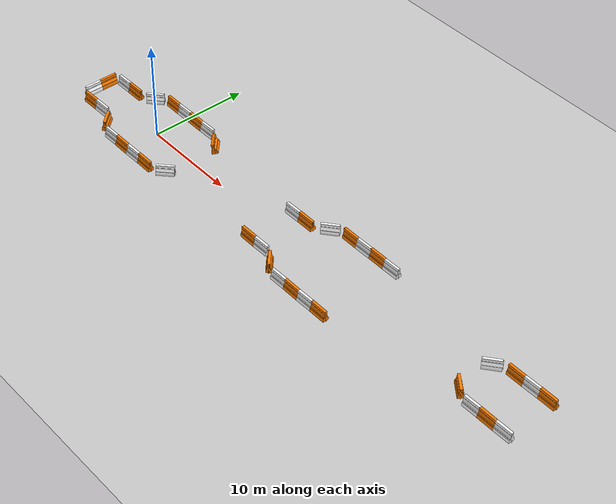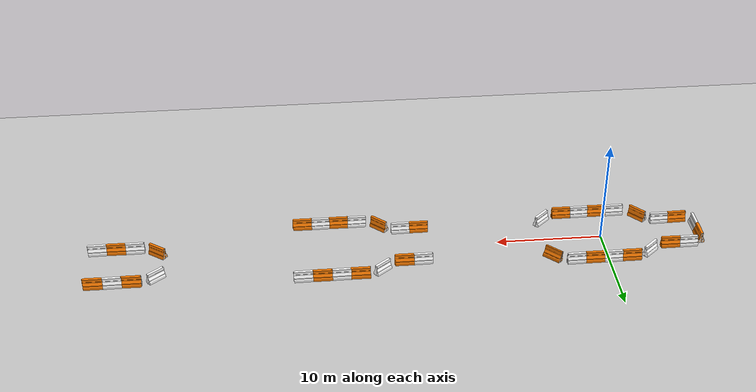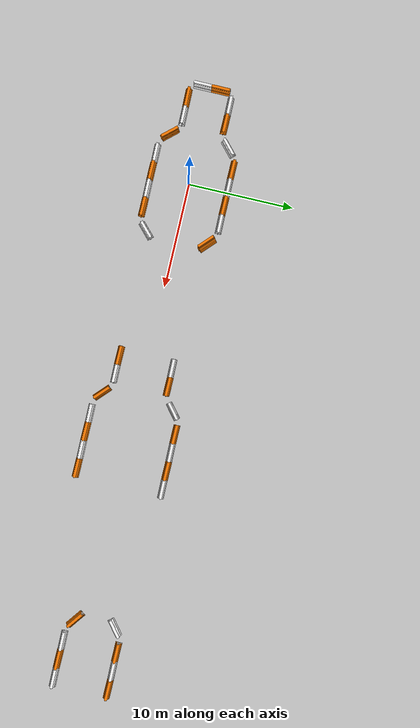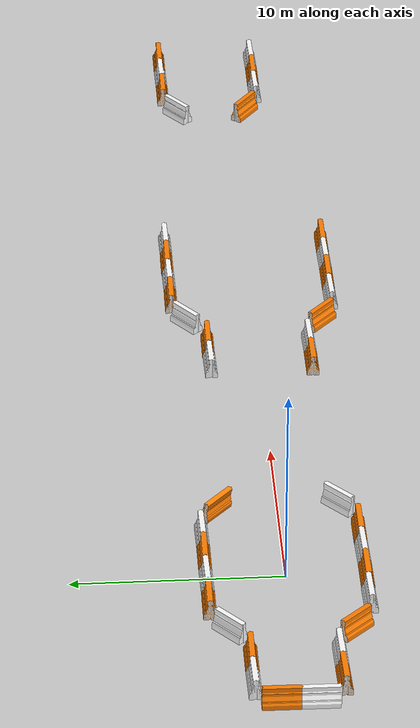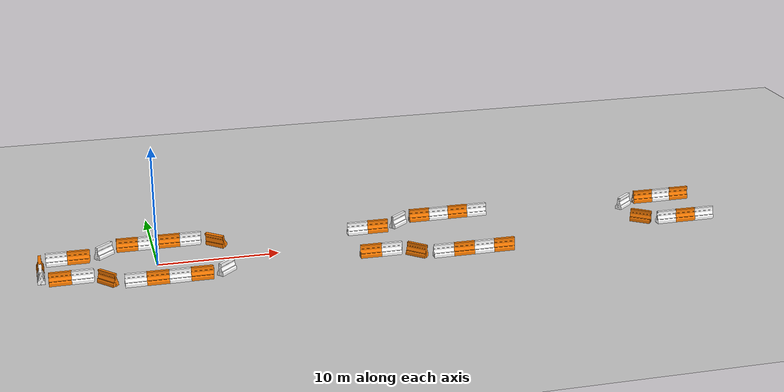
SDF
<sdf version="1.6">
 <world name="default">
  <light name="sun" type="directional">
   <pose>0 0 10 0 -0 0</pose>
   <diffuse>0.8 0.8 0.8 1</diffuse>
   <specular>0.2 0.2 0.2 1</specular>
   <attenuation>
    <range>1000</range>
    <constant>0.9</constant>
    <linear>0.01</linear>
    <quadratic>0.001</quadratic>
   </attenuation>
   <direction>-0.5 0.1 -0.9</direction>
  </light>
  <model name="ground_plane">
   <static>1</static>
   <link name="link">
    <collision name="collision">
     <geometry><plane><normal>0 0 1</normal><size>100 100</size></plane></geometry>
     <surface><friction><ode><mu>100</mu><mu2>50</mu2></ode></friction></surface>
    </collision>
    <visual name="visual">
     <cast_shadows>0</cast_shadows>
     <geometry><plane><normal>0 0 1</normal><size>100 100</size></plane></geometry>
     <material>
      <script><uri>file://media/materials/scripts/gazebo.material</uri><name>Gazebo/Grey</name></script>
     </material>
    </visual>
    <velocity_decay><linear>0</linear><angular>0</angular></velocity_decay>
   </link>
  </model>
  <physics name="default_physics" default="0" type="ode">
   <max_step_size>0.001</max_step_size>
   <real_time_factor>1</real_time_factor>
   <real_time_update_rate>1000</real_time_update_rate>
  </physics>
  <scene><ambient>0.4 0.4 0.4 1</ambient><background>0.7 0.7 0.7 1</background><shadows>1</shadows></scene>
  <spherical_coordinates>
   <surface_model>EARTH_WGS84</surface_model>
   <latitude_deg>0</latitude_deg>
   <longitude_deg>0</longitude_deg>
   <elevation>0</elevation>
   <heading_deg>0</heading_deg>
  </spherical_coordinates>
  <gravity>0 0 -9.8</gravity>
  <magnetic_field>6e-06 2.3e-05 -4.2e-05</magnetic_field>
  <atmosphere type="adiabatic"/>
  <model name="drc_practice_organge_jersey_barrier_2_clone_clone">
   <static>1</static>
   <link name="link">
    <visual name="visual">
     <geometry>
      <mesh><uri>model://drc_practice_orange_jersey_barrier/meshes/jersey_barrier.dae</uri></mesh>
     </geometry>
    </visual>
    <collision name="collision">
     <geometry>
      <mesh><uri>model://drc_practice_orange_jersey_barrier/meshes/jersey_barrier.dae</uri></mesh>
     </geometry>
    </collision>
    <velocity_decay><linear>0</linear><angular>0</angular></velocity_decay>
   </link>
   <pose>-9.31108 0.903543 0 0 -0 0</pose>
  </model>
  <model name="drc_practice_white_jersey_barrier_clone_clone">
   <static>1</static>
   <link name="link">
    <visual name="visual">
     <geometry>
      <mesh><uri>model://drc_practice_white_jersey_barrier/meshes/jersey_barrier.dae</uri></mesh>
     </geometry>
    </visual>
    <collision name="collision">
     <geometry>
      <mesh><uri>model://drc_practice_white_jersey_barrier/meshes/jersey_barrier.dae</uri></mesh>
     </geometry>
    </collision>
    <velocity_decay><linear>0</linear><angular>0</angular></velocity_decay>
   </link>
   <pose>-9.31598 -0.8429 0 0 -0 0</pose>
  </model>
  <model name="drc_practice_white_jersey_barrier_1_clone_clone_clone_0">
   <static>1</static>
   <link name="link">
    <visual name="visual">
     <geometry>
      <mesh><uri>model://drc_practice_white_jersey_barrier/meshes/jersey_barrier.dae</uri></mesh>
     </geometry>
    </visual>
    <collision name="collision">
     <geometry>
      <mesh><uri>model://drc_practice_white_jersey_barrier/meshes/jersey_barrier.dae</uri></mesh>
     </geometry>
    </collision>
    <velocity_decay><linear>0</linear><angular>0</angular></velocity_decay>
   </link>
   <pose>-7.96213 2.01975 0 0 -0 1.59123</pose>
  </model>
  <model name="drc_practice_organge_jersey_barrier_1_clone_clone_0">
   <static>1</static>
   <link name="link">
    <visual name="visual">
     <geometry>
      <mesh><uri>model://drc_practice_orange_jersey_barrier/meshes/jersey_barrier.dae</uri></mesh>
     </geometry>
    </visual>
    <collision name="collision">
     <geometry>
      <mesh><uri>model://drc_practice_orange_jersey_barrier/meshes/jersey_barrier.dae</uri></mesh>
     </geometry>
    </collision>
    <velocity_decay><linear>0</linear><angular>0</angular></velocity_decay>
   </link>
   <pose>-6.2195 2.02771 0 0 -0 1.57109</pose>
  </model>
  <model name="drc_practice_organge_jersey_barrier_0_clone_clone">
   <static>1</static>
   <link name="link">
    <visual name="visual">
     <geometry>
      <mesh><uri>model://drc_practice_orange_jersey_barrier/meshes/jersey_barrier.dae</uri></mesh>
     </geometry>
    </visual>
    <collision name="collision">
     <geometry>
      <mesh><uri>model://drc_practice_orange_jersey_barrier/meshes/jersey_barrier.dae</uri></mesh>
     </geometry>
    </collision>
    <velocity_decay><linear>0</linear><angular>0</angular></velocity_decay>
   </link>
   <pose>-7.86253 -2.01588 0 0 -0 1.59467</pose>
  </model>
  <model name="drc_practice_white_jersey_barrier_1_clone_clone_clone_0_clone">
   <static>1</static>
   <link name="link">
    <visual name="visual">
     <geometry>
      <mesh><uri>model://drc_practice_white_jersey_barrier/meshes/jersey_barrier.dae</uri></mesh>
     </geometry>
    </visual>
    <collision name="collision">
     <geometry>
      <mesh><uri>model://drc_practice_white_jersey_barrier/meshes/jersey_barrier.dae</uri></mesh>
     </geometry>
    </collision>
    <velocity_decay><linear>0</linear><angular>0</angular></velocity_decay>
   </link>
   <pose>-6.1229 -1.98808 0 0 -0 1.59123</pose>
  </model>
  <model name="drc_practice_organge_jersey_barrier_2_clone_clone_0">
   <static>1</static>
   <link name="link">
    <visual name="visual">
     <geometry>
      <mesh><uri>model://drc_practice_orange_jersey_barrier/meshes/jersey_barrier.dae</uri></mesh>
     </geometry>
    </visual>
    <collision name="collision">
     <geometry>
      <mesh><uri>model://drc_practice_orange_jersey_barrier/meshes/jersey_barrier.dae</uri></mesh>
     </geometry>
    </collision>
    <velocity_decay><linear>0</linear><angular>0</angular></velocity_decay>
   </link>
   <pose>-4.21589 -2.8466 0 0 -0 0.735921</pose>
  </model>
  <model name="drc_practice_white_jersey_barrier_clone_clone_0">
   <static>1</static>
   <link name="link">
    <visual name="visual">
     <geometry>
      <mesh><uri>model://drc_practice_white_jersey_barrier/meshes/jersey_barrier.dae</uri></mesh>
     </geometry>
    </visual>
    <collision name="collision">
     <geometry>
      <mesh><uri>model://drc_practice_white_jersey_barrier/meshes/jersey_barrier.dae</uri></mesh>
     </geometry>
    </collision>
    <velocity_decay><linear>0</linear><angular>0</angular></velocity_decay>
   </link>
   <pose>-4.07482 2.85137 0 0 0 -0.829832</pose>
  </model>
  <model name="drc_practice_white_jersey_barrier_1_clone_clone_clone_clone">
   <static>1</static>
   <link name="link">
    <visual name="visual">
     <geometry>
      <mesh><uri>model://drc_practice_white_jersey_barrier/meshes/jersey_barrier.dae</uri></mesh>
     </geometry>
    </visual>
    <collision name="collision">
     <geometry>
      <mesh><uri>model://drc_practice_white_jersey_barrier/meshes/jersey_barrier.dae</uri></mesh>
     </geometry>
    </collision>
    <velocity_decay><linear>0</linear><angular>0</angular></velocity_decay>
   </link>
   <pose>-2.06507 -3.68957 0 0 -0 1.59123</pose>
  </model>
  <model name="drc_practice_organge_jersey_barrier_1_clone_0_clone">
   <static>1</static>
   <link name="link">
    <visual name="visual">
     <geometry>
      <mesh><uri>model://drc_practice_orange_jersey_barrier/meshes/jersey_barrier.dae</uri></mesh>
     </geometry>
    </visual>
    <collision name="collision">
     <geometry>
      <mesh><uri>model://drc_practice_orange_jersey_barrier/meshes/jersey_barrier.dae</uri></mesh>
     </geometry>
    </collision>
    <velocity_decay><linear>0</linear><angular>0</angular></velocity_decay>
   </link>
   <pose>-2.12682 3.67666 0 0 -0 1.57109</pose>
  </model>
  <model name="drc_practice_organge_jersey_barrier_1_clone_0_clone_clone">
   <static>1</static>
   <link name="link">
    <visual name="visual">
     <geometry>
      <mesh><uri>model://drc_practice_orange_jersey_barrier/meshes/jersey_barrier.dae</uri></mesh>
     </geometry>
    </visual>
    <collision name="collision">
     <geometry>
      <mesh><uri>model://drc_practice_orange_jersey_barrier/meshes/jersey_barrier.dae</uri></mesh>
     </geometry>
    </collision>
    <velocity_decay><linear>0</linear><angular>0</angular></velocity_decay>
   </link>
   <pose>-0.338399 -3.69896 0 0 -0 1.57109</pose>
  </model>
  <model name="drc_practice_white_jersey_barrier_1_clone_clone_clone_clone_clone">
   <static>1</static>
   <link name="link">
    <visual name="visual">
     <geometry>
      <mesh><uri>model://drc_practice_white_jersey_barrier/meshes/jersey_barrier.dae</uri></mesh>
     </geometry>
    </visual>
    <collision name="collision">
     <geometry>
      <mesh><uri>model://drc_practice_white_jersey_barrier/meshes/jersey_barrier.dae</uri></mesh>
     </geometry>
    </collision>
    <velocity_decay><linear>0</linear><angular>0</angular></velocity_decay>
   </link>
   <pose>-0.391829 3.68501 0 0 -0 1.59123</pose>
  </model>
  <model name="drc_practice_white_jersey_barrier_1_clone_clone_clone_clone_clone_0">
   <static>1</static>
   <link name="link">
    <visual name="visual">
     <geometry>
      <mesh><uri>model://drc_practice_white_jersey_barrier/meshes/jersey_barrier.dae</uri></mesh>
     </geometry>
    </visual>
    <collision name="collision">
     <geometry>
      <mesh><uri>model://drc_practice_white_jersey_barrier/meshes/jersey_barrier.dae</uri></mesh>
     </geometry>
    </collision>
    <velocity_decay><linear>0</linear><angular>0</angular></velocity_decay>
   </link>
   <pose>1.40638 -3.68781 0 0 -0 1.59123</pose>
  </model>
  <model name="drc_practice_organge_jersey_barrier_1_clone_0_clone_clone_clone">
   <static>1</static>
   <link name="link">
    <visual name="visual">
     <geometry>
      <mesh><uri>model://drc_practice_orange_jersey_barrier/meshes/jersey_barrier.dae</uri></mesh>
     </geometry>
    </visual>
    <collision name="collision">
     <geometry>
      <mesh><uri>model://drc_practice_orange_jersey_barrier/meshes/jersey_barrier.dae</uri></mesh>
     </geometry>
    </collision>
    <velocity_decay><linear>0</linear><angular>0</angular></velocity_decay>
   </link>
   <pose>1.36049 3.69218 0 0 -0 1.57109</pose>
  </model>
  <model name="drc_practice_organge_jersey_barrier_1_clone_0_clone_clone_clone_0">
   <static>1</static>
   <link name="link">
    <visual name="visual">
     <geometry>
      <mesh><uri>model://drc_practice_orange_jersey_barrier/meshes/jersey_barrier.dae</uri></mesh>
     </geometry>
    </visual>
    <collision name="collision">
     <geometry>
      <mesh><uri>model://drc_practice_orange_jersey_barrier/meshes/jersey_barrier.dae</uri></mesh>
     </geometry>
    </collision>
    <velocity_decay><linear>0</linear><angular>0</angular></velocity_decay>
   </link>
   <pose>3.16286 -3.67282 0 0 -0 1.57109</pose>
  </model>
  <model name="drc_practice_white_jersey_barrier_1_clone_clone_clone_clone_clone_0_clone">
   <static>1</static>
   <link name="link">
    <visual name="visual">
     <geometry>
      <mesh><uri>model://drc_practice_white_jersey_barrier/meshes/jersey_barrier.dae</uri></mesh>
     </geometry>
    </visual>
    <collision name="collision">
     <geometry>
      <mesh><uri>model://drc_practice_white_jersey_barrier/meshes/jersey_barrier.dae</uri></mesh>
     </geometry>
    </collision>
    <velocity_decay><linear>0</linear><angular>0</angular></velocity_decay>
   </link>
   <pose>3.10966 3.70412 0 0 -0 1.59123</pose>
  </model>
  <model name="drc_practice_organge_jersey_barrier_2_clone_0">
   <static>1</static>
   <link name="link">
    <visual name="visual">
     <geometry>
      <mesh><uri>model://drc_practice_orange_jersey_barrier/meshes/jersey_barrier.dae</uri></mesh>
     </geometry>
    </visual>
    <collision name="collision">
     <geometry>
      <mesh><uri>model://drc_practice_orange_jersey_barrier/meshes/jersey_barrier.dae</uri></mesh>
     </geometry>
    </collision>
    <velocity_decay><linear>0</linear><angular>0</angular></velocity_decay>
   </link>
   <pose>5.25984 2.99709 0 -0.019928 -0.256426 0.828745</pose>
  </model>
  <model name="drc_practice_white_jersey_barrier_0_clone">
   <static>1</static>
   <link name="link">
    <visual name="visual">
     <geometry>
      <mesh><uri>model://drc_practice_white_jersey_barrier/meshes/jersey_barrier.dae</uri></mesh>
     </geometry>
    </visual>
    <collision name="collision">
     <geometry>
      <mesh><uri>model://drc_practice_white_jersey_barrier/meshes/jersey_barrier.dae</uri></mesh>
     </geometry>
    </collision>
    <velocity_decay><linear>0</linear><angular>0</angular></velocity_decay>
   </link>
   <pose>5.25026 -2.90161 0 0 -0 2.32779</pose>
  </model>
  <model name="drc_practice_white_jersey_barrier_1_clone_clone_clone_clone_0">
   <static>1</static>
   <link name="link">
    <visual name="visual">
     <geometry>
      <mesh><uri>model://drc_practice_white_jersey_barrier/meshes/jersey_barrier.dae</uri></mesh>
     </geometry>
    </visual>
    <collision name="collision">
     <geometry>
      <mesh><uri>model://drc_practice_white_jersey_barrier/meshes/jersey_barrier.dae</uri></mesh>
     </geometry>
    </collision>
    <velocity_decay><linear>0</linear><angular>0</angular></velocity_decay>
   </link>
   <pose>17.3061 2.46586 0 0 -0 1.59123</pose>
  </model>
  <model name="drc_practice_organge_jersey_barrier_1_clone_0_clone_0_clone_clone">
   <static>1</static>
   <link name="link">
    <visual name="visual">
     <geometry>
      <mesh><uri>model://drc_practice_orange_jersey_barrier/meshes/jersey_barrier.dae</uri></mesh>
     </geometry>
    </visual>
    <collision name="collision">
     <geometry>
      <mesh><uri>model://drc_practice_orange_jersey_barrier/meshes/jersey_barrier.dae</uri></mesh>
     </geometry>
    </collision>
    <velocity_decay><linear>0</linear><angular>0</angular></velocity_decay>
   </link>
   <pose>17.2522 -2.60307 0 0 -0 1.57109</pose>
  </model>
  <model name="drc_practice_white_jersey_barrier_1_clone_clone_clone_clone_clone_1">
   <static>1</static>
   <link name="link">
    <visual name="visual">
     <geometry>
      <mesh><uri>model://drc_practice_white_jersey_barrier/meshes/jersey_barrier.dae</uri></mesh>
     </geometry>
    </visual>
    <collision name="collision">
     <geometry>
      <mesh><uri>model://drc_practice_white_jersey_barrier/meshes/jersey_barrier.dae</uri></mesh>
     </geometry>
    </collision>
    <velocity_decay><linear>0</linear><angular>0</angular></velocity_decay>
   </link>
   <pose>18.9808 -2.59193 0 0 -0 1.59123</pose>
  </model>
  <model name="drc_practice_organge_jersey_barrier_1_clone_0_clone_0_clone_clone_clone">
   <static>1</static>
   <link name="link">
    <visual name="visual">
     <geometry>
      <mesh><uri>model://drc_practice_orange_jersey_barrier/meshes/jersey_barrier.dae</uri></mesh>
     </geometry>
    </visual>
    <collision name="collision">
     <geometry>
      <mesh><uri>model://drc_practice_orange_jersey_barrier/meshes/jersey_barrier.dae</uri></mesh>
     </geometry>
    </collision>
    <velocity_decay><linear>0</linear><angular>0</angular></velocity_decay>
   </link>
   <pose>19.0592 2.49063 0 0 -0 1.57109</pose>
  </model>
  <model name="drc_practice_white_jersey_barrier_1_clone_clone_clone_clone_clone_1_clone">
   <static>1</static>
   <link name="link">
    <visual name="visual">
     <geometry>
      <mesh><uri>model://drc_practice_white_jersey_barrier/meshes/jersey_barrier.dae</uri></mesh>
     </geometry>
    </visual>
    <collision name="collision">
     <geometry>
      <mesh><uri>model://drc_practice_white_jersey_barrier/meshes/jersey_barrier.dae</uri></mesh>
     </geometry>
    </collision>
    <velocity_decay><linear>0</linear><angular>0</angular></velocity_decay>
   </link>
   <pose>21.1725 3.44887 0 0 -0 2.2629</pose>
  </model>
  <model name="drc_practice_organge_jersey_barrier_1_clone_0_clone_0">
   <static>1</static>
   <link name="link">
    <visual name="visual">
     <geometry>
      <mesh><uri>model://drc_practice_orange_jersey_barrier/meshes/jersey_barrier.dae</uri></mesh>
     </geometry>
    </visual>
    <collision name="collision">
     <geometry>
      <mesh><uri>model://drc_practice_orange_jersey_barrier/meshes/jersey_barrier.dae</uri></mesh>
     </geometry>
    </collision>
    <velocity_decay><linear>0</linear><angular>0</angular></velocity_decay>
   </link>
   <pose>23.2269 4.12682 0 0 -0 1.57109</pose>
  </model>
  <model name="drc_practice_white_jersey_barrier_1_clone_clone_clone_clone_clone_1_clone_0">
   <static>1</static>
   <link name="link">
    <visual name="visual">
     <geometry>
      <mesh><uri>model://drc_practice_white_jersey_barrier/meshes/jersey_barrier.dae</uri></mesh>
     </geometry>
    </visual>
    <collision name="collision">
     <geometry>
      <mesh><uri>model://drc_practice_white_jersey_barrier/meshes/jersey_barrier.dae</uri></mesh>
     </geometry>
    </collision>
    <velocity_decay><linear>0</linear><angular>0</angular></velocity_decay>
   </link>
   <pose>23.1136 -4.01415 0 0 -0 1.59123</pose>
  </model>
  <model name="drc_practice_organge_jersey_barrier_1_clone_0_clone_0_clone">
   <static>1</static>
   <link name="link">
    <visual name="visual">
     <geometry>
      <mesh><uri>model://drc_practice_orange_jersey_barrier/meshes/jersey_barrier.dae</uri></mesh>
     </geometry>
    </visual>
    <collision name="collision">
     <geometry>
      <mesh><uri>model://drc_practice_orange_jersey_barrier/meshes/jersey_barrier.dae</uri></mesh>
     </geometry>
    </collision>
    <velocity_decay><linear>0</linear><angular>0</angular></velocity_decay>
   </link>
   <pose>24.8514 -4.01279 0 0 -0 1.57109</pose>
  </model>
  <model name="drc_practice_white_jersey_barrier_1_clone_clone_clone_clone_clone_1_clone_0_clone">
   <static>1</static>
   <link name="link">
    <visual name="visual">
     <geometry>
      <mesh><uri>model://drc_practice_white_jersey_barrier/meshes/jersey_barrier.dae</uri></mesh>
     </geometry>
    </visual>
    <collision name="collision">
     <geometry>
      <mesh><uri>model://drc_practice_white_jersey_barrier/meshes/jersey_barrier.dae</uri></mesh>
     </geometry>
    </collision>
    <velocity_decay><linear>0</linear><angular>0</angular></velocity_decay>
   </link>
   <pose>24.9705 4.1323 0 0 -0 1.59123</pose>
  </model>
  <model name="drc_practice_white_jersey_barrier_1_clone_clone_clone_clone_clone_1_clone_0_clone_clone">
   <static>1</static>
   <link name="link">
    <visual name="visual">
     <geometry>
      <mesh><uri>model://drc_practice_white_jersey_barrier/meshes/jersey_barrier.dae</uri></mesh>
     </geometry>
    </visual>
    <collision name="collision">
     <geometry>
      <mesh><uri>model://drc_practice_white_jersey_barrier/meshes/jersey_barrier.dae</uri></mesh>
     </geometry>
    </collision>
    <velocity_decay><linear>0</linear><angular>0</angular></velocity_decay>
   </link>
   <pose>26.588 -4.00666 0 0 -0 1.59123</pose>
  </model>
  <model name="drc_practice_organge_jersey_barrier_1_clone_0_clone_0_clone_clone_0">
   <static>1</static>
   <link name="link">
    <visual name="visual">
     <geometry>
      <mesh><uri>model://drc_practice_orange_jersey_barrier/meshes/jersey_barrier.dae</uri></mesh>
     </geometry>
    </visual>
    <collision name="collision">
     <geometry>
      <mesh><uri>model://drc_practice_orange_jersey_barrier/meshes/jersey_barrier.dae</uri></mesh>
     </geometry>
    </collision>
    <velocity_decay><linear>0</linear><angular>0</angular></velocity_decay>
   </link>
   <pose>26.7091 4.15709 0 0 -0 1.57109</pose>
  </model>
  <model name="drc_practice_organge_jersey_barrier_1_clone_0_clone_0_clone_clone_0_clone">
   <static>1</static>
   <link name="link">
    <visual name="visual">
     <geometry>
      <mesh><uri>model://drc_practice_orange_jersey_barrier/meshes/jersey_barrier.dae</uri></mesh>
     </geometry>
    </visual>
    <collision name="collision">
     <geometry>
      <mesh><uri>model://drc_practice_orange_jersey_barrier/meshes/jersey_barrier.dae</uri></mesh>
     </geometry>
    </collision>
    <velocity_decay><linear>0</linear><angular>0</angular></velocity_decay>
   </link>
   <pose>28.3237 -4.00041 0 0 -0 1.57109</pose>
  </model>
  <model name="drc_practice_white_jersey_barrier_1_clone_clone_clone_clone_clone_1_clone_0_clone_clone_clone">
   <static>1</static>
   <link name="link">
    <visual name="visual">
     <geometry>
      <mesh><uri>model://drc_practice_white_jersey_barrier/meshes/jersey_barrier.dae</uri></mesh>
     </geometry>
    </visual>
    <collision name="collision">
     <geometry>
      <mesh><uri>model://drc_practice_white_jersey_barrier/meshes/jersey_barrier.dae</uri></mesh>
     </geometry>
    </collision>
    <velocity_decay><linear>0</linear><angular>0</angular></velocity_decay>
   </link>
   <pose>28.4554 4.15671 0 0 -0 1.59123</pose>
  </model>
  <model name="drc_practice_organge_jersey_barrier_1_clone_0_clone_0_clone_clone_clone_clone_clone">
   <static>1</static>
   <link name="link">
    <visual name="visual">
     <geometry>
      <mesh><uri>model://drc_practice_orange_jersey_barrier/meshes/jersey_barrier.dae</uri></mesh>
     </geometry>
    </visual>
    <collision name="collision">
     <geometry>
      <mesh><uri>model://drc_practice_orange_jersey_barrier/meshes/jersey_barrier.dae</uri></mesh>
     </geometry>
    </collision>
    <velocity_decay><linear>0</linear><angular>0</angular></velocity_decay>
   </link>
   <pose>41.9564 -0.894114 0 0 -0 0.932111</pose>
  </model>
  <model name="drc_practice_white_jersey_barrier_0_clone_clone">
   <static>1</static>
   <link name="link">
    <visual name="visual">
     <geometry>
      <mesh><uri>model://drc_practice_white_jersey_barrier/meshes/jersey_barrier.dae</uri></mesh>
     </geometry>
    </visual>
    <collision name="collision">
     <geometry>
      <mesh><uri>model://drc_practice_white_jersey_barrier/meshes/jersey_barrier.dae</uri></mesh>
     </geometry>
    </collision>
    <velocity_decay><linear>0</linear><angular>0</angular></velocity_decay>
   </link>
   <pose>41.8884 2.8226 0 0 -0 2.25246</pose>
  </model>
  <model name="drc_practice_white_jersey_barrier_1_clone_clone_clone_clone_clone_1_clone_0_clone_clone_clone_0">
   <static>1</static>
   <link name="link">
    <visual name="visual">
     <geometry>
      <mesh><uri>model://drc_practice_white_jersey_barrier/meshes/jersey_barrier.dae</uri></mesh>
     </geometry>
    </visual>
    <collision name="collision">
     <geometry>
      <mesh><uri>model://drc_practice_white_jersey_barrier/meshes/jersey_barrier.dae</uri></mesh>
     </geometry>
    </collision>
    <velocity_decay><linear>0</linear><angular>0</angular></velocity_decay>
   </link>
   <pose>44.0664 -1.58544 0 0 -0 1.59123</pose>
  </model>
  <model name="drc_practice_organge_jersey_barrier_1_clone_0_clone_0_clone_clone_0_clone_clone">
   <static>1</static>
   <link name="link">
    <visual name="visual">
     <geometry>
      <mesh><uri>model://drc_practice_orange_jersey_barrier/meshes/jersey_barrier.dae</uri></mesh>
     </geometry>
    </visual>
    <collision name="collision">
     <geometry>
      <mesh><uri>model://drc_practice_orange_jersey_barrier/meshes/jersey_barrier.dae</uri></mesh>
     </geometry>
    </collision>
    <velocity_decay><linear>0</linear><angular>0</angular></velocity_decay>
   </link>
   <pose>44.0107 3.51756 0 0 -0 1.57109</pose>
  </model>
  <model name="drc_practice_organge_jersey_barrier_1_clone_0_clone_0_clone_clone_0_clone_clone_clone">
   <static>1</static>
   <link name="link">
    <visual name="visual">
     <geometry>
      <mesh><uri>model://drc_practice_orange_jersey_barrier/meshes/jersey_barrier.dae</uri></mesh>
     </geometry>
    </visual>
    <collision name="collision">
     <geometry>
      <mesh><uri>model://drc_practice_orange_jersey_barrier/meshes/jersey_barrier.dae</uri></mesh>
     </geometry>
    </collision>
    <velocity_decay><linear>0</linear><angular>0</angular></velocity_decay>
   </link>
   <pose>45.8077 -1.58464 0 0 -0 1.57109</pose>
  </model>
  <model name="drc_practice_white_jersey_barrier_1_clone_clone_clone_clone_clone_1_clone_0_clone_clone_clone_0_clone">
   <static>1</static>
   <link name="link">
    <visual name="visual">
     <geometry>
      <mesh><uri>model://drc_practice_white_jersey_barrier/meshes/jersey_barrier.dae</uri></mesh>
     </geometry>
    </visual>
    <collision name="collision">
     <geometry>
      <mesh><uri>model://drc_practice_white_jersey_barrier/meshes/jersey_barrier.dae</uri></mesh>
     </geometry>
    </collision>
    <velocity_decay><linear>0</linear><angular>0</angular></velocity_decay>
   </link>
   <pose>47.5532 -1.57347 0 0 -0 1.59123</pose>
  </model>
  <model name="drc_practice_white_jersey_barrier_1_clone_clone_clone_clone_clone_1_clone_0_clone_clone_clone_0_clone_0">
   <static>1</static>
   <link name="link">
    <visual name="visual">
     <geometry>
      <mesh><uri>model://drc_practice_white_jersey_barrier/meshes/jersey_barrier.dae</uri></mesh>
     </geometry>
    </visual>
    <collision name="collision">
     <geometry>
      <mesh><uri>model://drc_practice_white_jersey_barrier/meshes/jersey_barrier.dae</uri></mesh>
     </geometry>
    </collision>
    <velocity_decay><linear>0</linear><angular>0</angular></velocity_decay>
   </link>
   <pose>45.7295 3.53367 0 0 -0 1.59123</pose>
  </model>
  <model name="drc_practice_organge_jersey_barrier_1_clone_0_clone_0_clone_clone_0_clone_clone_clone_0">
   <static>1</static>
   <link name="link">
    <visual name="visual">
     <geometry>
      <mesh><uri>model://drc_practice_orange_jersey_barrier/meshes/jersey_barrier.dae</uri></mesh>
     </geometry>
    </visual>
    <collision name="collision">
     <geometry>
      <mesh><uri>model://drc_practice_orange_jersey_barrier/meshes/jersey_barrier.dae</uri></mesh>
     </geometry>
    </collision>
    <velocity_decay><linear>0</linear><angular>0</angular></velocity_decay>
   </link>
   <pose>47.4727 3.54555 0 0 -0 1.57109</pose>
  </model>
  <model name="drc_practice_organge_jersey_barrier_1_clone_0_clone_0_clone_clone_clone_0">
   <static>1</static>
   <link name="link">
    <visual name="visual">
     <geometry>
      <mesh><uri>model://drc_practice_orange_jersey_barrier/meshes/jersey_barrier.dae</uri></mesh>
     </geometry>
    </visual>
    <collision name="collision">
     <geometry>
      <mesh><uri>model://drc_practice_orange_jersey_barrier/meshes/jersey_barrier.dae</uri></mesh>
     </geometry>
    </collision>
    <velocity_decay><linear>0</linear><angular>0</angular></velocity_decay>
   </link>
   <pose>20.9997 -3.36445 0 0 -0 0.829291</pose>
  </model>
 </world>
</sdf>
